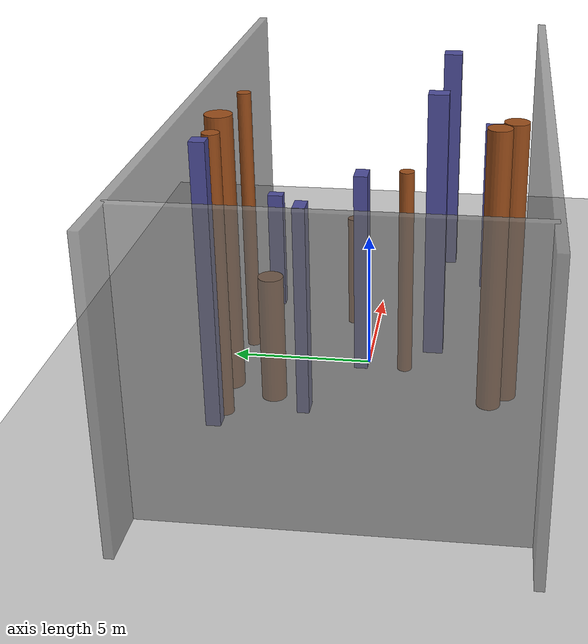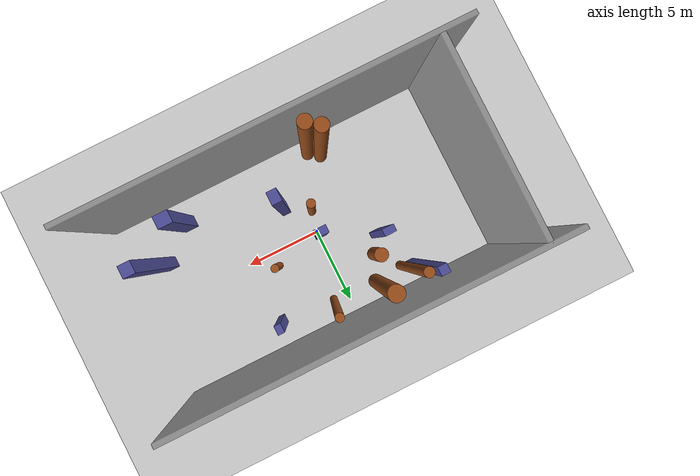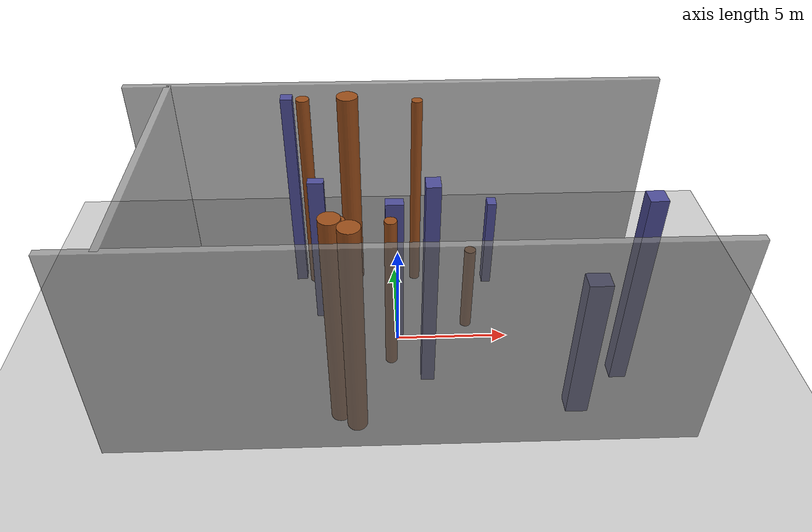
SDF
<?xml version="1.0" ?>
<sdf version='1.7'>
  <world name='tunnel_pcd_match'>
    <!-- Lighting -->
    <light name='sun' type='directional'>
      <cast_shadows>1</cast_shadows>
      <pose>0 0 15 0 -0 0</pose>
      <diffuse>0.8 0.8 0.8 1</diffuse>
      <specular>0.2 0.2 0.2 1</specular>
      <attenuation>
        <range>1000</range>
        <constant>0.9</constant>
        <linear>0.01</linear>
        <quadratic>0.001</quadratic>
      </attenuation>
      <direction>-0.5 0.1 -0.9</direction>
    </light>

    <!-- Physics -->
    <gravity>0 0 -9.8</gravity>
    <physics type='ode'>
      <max_step_size>0.001</max_step_size>
      <real_time_factor>1</real_time_factor>
      <real_time_update_rate>1000</real_time_update_rate>
    </physics>
    <scene>
      <ambient>0.4 0.4 0.4 1</ambient>
      <background>0.7 0.7 0.7 1</background>
      <shadows>1</shadows>
    </scene>

    <!-- Ground plane -->
    <model name='ground_plane'>
      <static>1</static>
      <link name='link'>
        <collision name='collision'>
          <geometry><plane><normal>0 0 1</normal><size>100 100</size></plane></geometry>
        </collision>
        <visual name='visual'>
          <cast_shadows>0</cast_shadows>
          <geometry><plane><normal>0 0 1</normal><size>100 100</size></plane></geometry>
          <material><script>
            <uri>file://media/materials/scripts/gazebo.material</uri>
            <name>Gazebo/Grey</name>
          </script></material>
        </visual>
      </link>
    </model>

    <!-- wall_left at Y=-6.0 -->
    <model name='wall_left'>
      <static>1</static>
      <pose>0 -6.0000 5.0000 0 0 0</pose>
      <link name='link'>
        <collision name='collision'>
          <geometry><box><size>24.0000 0.3 10.0000</size></box></geometry>
        </collision>
        <visual name='visual'>
          <geometry><box><size>24.0000 0.3 10.0000</size></box></geometry>
          <material><ambient>0.5 0.5 0.5 0.7</ambient></material>
        </visual>
      </link>
    </model>

    <!-- wall_right at Y=6.0 -->
    <model name='wall_right'>
      <static>1</static>
      <pose>0 6.0000 5.0000 0 0 0</pose>
      <link name='link'>
        <collision name='collision'>
          <geometry><box><size>24.0000 0.3 10.0000</size></box></geometry>
        </collision>
        <visual name='visual'>
          <geometry><box><size>24.0000 0.3 10.0000</size></box></geometry>
          <material><ambient>0.5 0.5 0.5 0.7</ambient></material>
        </visual>
      </link>
    </model>

    <!-- back_wall at X=-10.0 -->
    <model name='back_wall'>
      <static>1</static>
      <pose>-10.0000 0 5.0000 0 0 0</pose>
      <link name='link'>
        <collision name='collision'>
          <geometry><box><size>0.3 12.0000 10.0000</size></box></geometry>
        </collision>
        <visual name='visual'>
          <geometry><box><size>0.3 12.0000 10.0000</size></box></geometry>
          <material><ambient>0.5 0.5 0.5 0.7</ambient></material>
        </visual>
      </link>
    </model>

    <model name='cyl_0'>
      <static>1</static>
      <pose>0.992642 4.507143 4.927976 0 0 0</pose>
      <link name='link'>
        <collision name='collision'>
          <geometry><cylinder><radius>0.246806</radius><length>9.855952</length></cylinder></geometry>
        </collision>
        <visual name='visual'>
          <geometry><cylinder><radius>0.246806</radius><length>9.855952</length></cylinder></geometry>
          <material><ambient>0.6 0.3 0.1 1</ambient></material>
        </visual>
      </link>
    </model>

    <model name='cyl_1'>
      <static>1</static>
      <pose>-2.504088 -4.419164 5.000000 0 0 0</pose>
      <link name='link'>
        <collision name='collision'>
          <geometry><cylinder><radius>0.412422</radius><length>10.000000</length></cylinder></geometry>
        </collision>
        <visual name='visual'>
          <geometry><cylinder><radius>0.412422</radius><length>10.000000</length></cylinder></geometry>
          <material><ambient>0.6 0.3 0.1 1</ambient></material>
        </visual>
      </link>
    </model>

    <model name='box_0'>
      <static>1</static>
      <pose>-4.670648 4.699099 5.000000 0 0 0</pose>
      <link name='link'>
        <collision name='collision'>
          <geometry><box><size>0.509095 0.510043 10.000000</size></box></geometry>
        </collision>
        <visual name='visual'>
          <geometry><box><size>0.509095 0.510043 10.000000</size></box></geometry>
          <material><ambient>0.3 0.3 0.6 1</ambient></material>
        </visual>
      </link>
    </model>

    <model name='box_1'>
      <static>1</static>
      <pose>-0.132124 0.247564 3.727780 0 0 0</pose>
      <link name='link'>
        <collision name='collision'>
          <geometry><box><size>0.767112 0.483696 7.455560</size></box></geometry>
        </collision>
        <visual name='visual'>
          <geometry><box><size>0.767112 0.483696 7.455560</size></box></geometry>
          <material><ambient>0.3 0.3 0.6 1</ambient></material>
        </visual>
      </link>
    </model>

    <model name='cyl_2'>
      <static>1</static>
      <pose>-0.325686 -1.336382 3.824280 0 0 0</pose>
      <link name='link'>
        <collision name='collision'>
          <geometry><cylinder><radius>0.259902</radius><length>7.648560</length></cylinder></geometry>
        </collision>
        <visual name='visual'>
          <geometry><cylinder><radius>0.259902</radius><length>7.648560</length></cylinder></geometry>
          <material><ambient>0.6 0.3 0.1 1</ambient></material>
        </visual>
      </link>
    </model>

    <model name='cyl_3'>
      <static>1</static>
      <pose>3.227751 0.924146 2.185802 0 0 0</pose>
      <link name='link'>
        <collision name='collision'>
          <geometry><cylinder><radius>0.251157</radius><length>4.371603</length></cylinder></geometry>
        </collision>
        <visual name='visual'>
          <geometry><cylinder><radius>0.251157</radius><length>4.371603</length></cylinder></geometry>
          <material><ambient>0.6 0.3 0.1 1</ambient></material>
        </visual>
      </link>
    </model>

    <model name='cyl_4'>
      <static>1</static>
      <pose>-3.959175 4.488855 5.000000 0 0 0</pose>
      <link name='link'>
        <collision name='collision'>
          <geometry><cylinder><radius>0.291384</radius><length>10.000000</length></cylinder></geometry>
        </collision>
        <visual name='visual'>
          <geometry><cylinder><radius>0.291384</radius><length>10.000000</length></cylinder></geometry>
          <material><ambient>0.6 0.3 0.1 1</ambient></material>
        </visual>
      </link>
    </model>

    <model name='box_2'>
      <static>1</static>
      <pose>-3.437246 1.842330 3.760610 0 0 0</pose>
      <link name='link'>
        <collision name='collision'>
          <geometry><box><size>0.697106 0.420633 7.521220</size></box></geometry>
        </collision>
        <visual name='visual'>
          <geometry><box><size>0.697106 0.420633 7.521220</size></box></geometry>
          <material><ambient>0.3 0.3 0.6 1</ambient></material>
        </visual>
      </link>
    </model>

    <model name='box_3'>
      <static>1</static>
      <pose>9.549126 -2.412200 4.650089 0 0 0</pose>
      <link name='link'>
        <collision name='collision'>
          <geometry><box><size>0.712041 0.728026 9.300178</size></box></geometry>
        </collision>
        <visual name='visual'>
          <geometry><box><size>0.712041 0.728026 9.300178</size></box></geometry>
          <material><ambient>0.3 0.3 0.6 1</ambient></material>
        </visual>
      </link>
    </model>

    <model name='cyl_5'>
      <static>1</static>
      <pose>-2.042329 4.695846 5.000000 0 0 0</pose>
      <link name='link'>
        <collision name='collision'>
          <geometry><cylinder><radius>0.468448</radius><length>10.000000</length></cylinder></geometry>
        </collision>
        <visual name='visual'>
          <geometry><cylinder><radius>0.468448</radius><length>10.000000</length></cylinder></geometry>
          <material><ambient>0.6 0.3 0.1 1</ambient></material>
        </visual>
      </link>
    </model>

    <model name='box_4'>
      <static>1</static>
      <pose>4.566400 4.218742 2.353970 0 0 0</pose>
      <link name='link'>
        <collision name='collision'>
          <geometry><box><size>0.427136 0.595198 4.707940</size></box></geometry>
        </collision>
        <visual name='visual'>
          <geometry><box><size>0.427136 0.595198 4.707940</size></box></geometry>
          <material><ambient>0.3 0.3 0.6 1</ambient></material>
        </visual>
      </link>
    </model>

    <model name='box_5'>
      <static>1</static>
      <pose>1.218837 -2.286510 5.000000 0 0 0</pose>
      <link name='link'>
        <collision name='collision'>
          <geometry><box><size>0.568561 0.725618 10.000000</size></box></geometry>
        </collision>
        <visual name='visual'>
          <geometry><box><size>0.568561 0.725618 10.000000</size></box></geometry>
          <material><ambient>0.3 0.3 0.6 1</ambient></material>
        </visual>
      </link>
    </model>

    <model name='cyl_6'>
      <static>1</static>
      <pose>-2.745212 3.021970 2.298203 0 0 0</pose>
      <link name='link'>
        <collision name='collision'>
          <geometry><cylinder><radius>0.431673</radius><length>4.596405</length></cylinder></geometry>
        </collision>
        <visual name='visual'>
          <geometry><cylinder><radius>0.431673</radius><length>4.596405</length></cylinder></geometry>
          <material><ambient>0.6 0.3 0.1 1</ambient></material>
        </visual>
      </link>
    </model>

    <model name='cyl_7'>
      <static>1</static>
      <pose>-1.820549 -4.944779 5.000000 0 0 0</pose>
      <link name='link'>
        <collision name='collision'>
          <geometry><cylinder><radius>0.418702</radius><length>10.000000</length></cylinder></geometry>
        </collision>
        <visual name='visual'>
          <geometry><cylinder><radius>0.418702</radius><length>10.000000</length></cylinder></geometry>
          <material><ambient>0.6 0.3 0.1 1</ambient></material>
        </visual>
      </link>
    </model>

    <model name='box_6'>
      <static>1</static>
      <pose>7.340326 -4.259553 3.433863 0 0 0</pose>
      <link name='link'>
        <collision name='collision'>
          <geometry><box><size>0.917862 0.773979 6.867726</size></box></geometry>
        </collision>
        <visual name='visual'>
          <geometry><box><size>0.917862 0.773979 6.867726</size></box></geometry>
          <material><ambient>0.3 0.3 0.6 1</ambient></material>
        </visual>
      </link>
    </model>

  </world>
</sdf>
